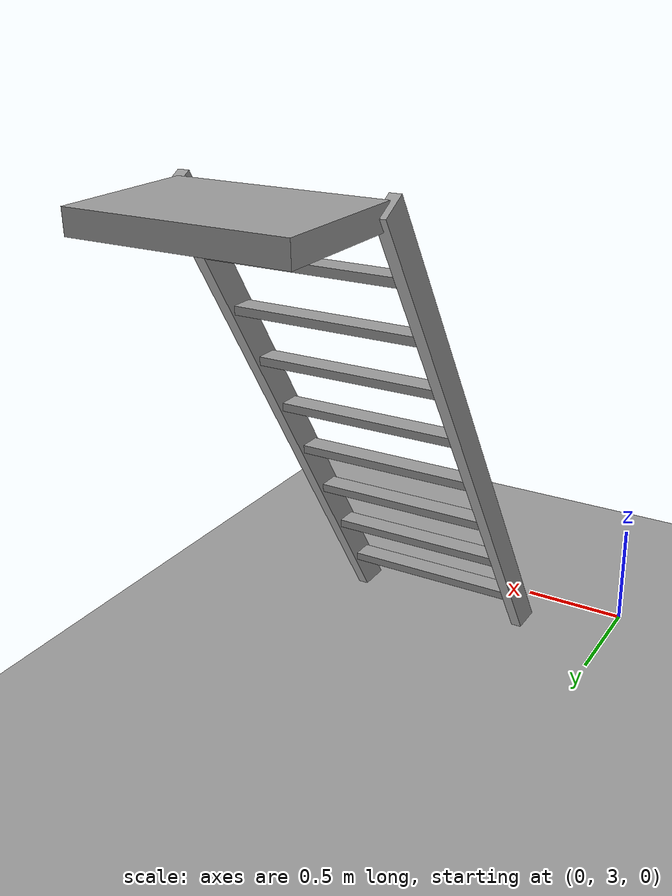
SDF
<sdf version="1.7">
 <world name="default">
  <light name="sun" type="directional">
   <pose>0 0 10 0 -0 0</pose>
   <diffuse>0.8 0.8 0.8 1</diffuse>
   <specular>0.2 0.2 0.2 1</specular>
   <attenuation>
    <range>1000</range>
    <constant>0.9</constant>
    <linear>0.01</linear>
    <quadratic>0.001</quadratic>
   </attenuation>
   <direction>-0.5 0.1 -0.9</direction>
   <spot><inner_angle>0</inner_angle><outer_angle>0</outer_angle><falloff>0</falloff></spot>
  </light>
  <model name="ground_plane">
   <static>1</static>
   <link name="link">
    <collision name="collision">
     <geometry><plane><normal>0 0 1</normal><size>100 100</size></plane></geometry>
     <surface><friction><ode><mu>100</mu><mu2>50</mu2></ode></friction></surface>
    </collision>
    <visual name="visual">
     <cast_shadows>0</cast_shadows>
     <geometry><plane><normal>0 0 1</normal><size>100 100</size></plane></geometry>
     <material>
      <script><uri>file://media/materials/scripts/gazebo.material</uri><name>Gazebo/Grey</name></script>
     </material>
    </visual>
   </link>
  </model>
  <gravity>0 0 -9.8</gravity>
  <magnetic_field>6e-06 2.3e-05 -4.2e-05</magnetic_field>
  <atmosphere type="adiabatic"/>
  <physics type="ode">
   <max_step_size>0.001</max_step_size>
   <real_time_factor>1</real_time_factor>
   <real_time_update_rate>1000</real_time_update_rate>
  </physics>
  <scene><ambient>0.4 0.4 0.4 1</ambient><background>0.7 0.7 0.7 1</background><shadows>1</shadows></scene>
  <spherical_coordinates>
   <surface_model>EARTH_WGS84</surface_model>
   <latitude_deg>0</latitude_deg>
   <longitude_deg>0</longitude_deg>
   <elevation>0</elevation>
   <heading_deg>0</heading_deg>
  </spherical_coordinates>
  <model name="ground_plane_0">
   <static>1</static>
   <link name="link">
    <collision name="collision">
     <geometry><plane><normal>0 0 1</normal><size>100 100</size></plane></geometry>
     <surface><friction><ode><mu>100</mu><mu2>50</mu2></ode></friction></surface>
    </collision>
    <visual name="visual">
     <cast_shadows>0</cast_shadows>
     <geometry><plane><normal>0 0 1</normal><size>100 100</size></plane></geometry>
     <material>
      <script><uri>file://media/materials/scripts/gazebo.material</uri><name>Gazebo/Grey</name></script>
     </material>
    </visual>
   </link>
   <pose>1.43802 -1.35772 0 0 -0 0</pose>
  </model>
  <model name="ladder_60deg_0rails">
   <static>1</static>
   <link name="step0">
    <pose>0 0.15396 0.266667 0 -0 0</pose>
    <inertial>
     <mass>9.75482</mass>
     <inertia>
      <ixx>0.00957124</ixx>
      <iyy>0.65963</iyy>
      <izz>0.666842</izz>
      <ixy>0</ixy>
      <ixz>0</ixz>
      <iyz>0</iyz>
     </inertia>
    </inertial>
    <collision name="collision"><geometry><box><size>0.9 0.1016 0.0381</size></box></geometry></collision>
    <visual name="visual">
     <geometry><box><size>0.9 0.1016 0.0381</size></box></geometry>
     <material>
      <script><uri>file://media/materials/scripts/gazebo.material</uri><name>Gazebo/Grey</name></script>
     </material>
    </visual>
   </link>
   <link name="step1">
    <pose>0 0.30792 0.533333 0 -0 0</pose>
    <inertial>
     <mass>9.75482</mass>
     <inertia>
      <ixx>0.00957124</ixx>
      <iyy>0.65963</iyy>
      <izz>0.666842</izz>
      <ixy>0</ixy>
      <ixz>0</ixz>
      <iyz>0</iyz>
     </inertia>
    </inertial>
    <collision name="collision"><geometry><box><size>0.9 0.1016 0.0381</size></box></geometry></collision>
    <visual name="visual">
     <geometry><box><size>0.9 0.1016 0.0381</size></box></geometry>
     <material>
      <script><uri>file://media/materials/scripts/gazebo.material</uri><name>Gazebo/Grey</name></script>
     </material>
    </visual>
   </link>
   <link name="step2">
    <pose>0 0.46188 0.8 0 -0 0</pose>
    <inertial>
     <mass>9.75482</mass>
     <inertia>
      <ixx>0.00957124</ixx>
      <iyy>0.65963</iyy>
      <izz>0.666842</izz>
      <ixy>0</ixy>
      <ixz>0</ixz>
      <iyz>0</iyz>
     </inertia>
    </inertial>
    <collision name="collision"><geometry><box><size>0.9 0.1016 0.0381</size></box></geometry></collision>
    <visual name="visual">
     <geometry><box><size>0.9 0.1016 0.0381</size></box></geometry>
     <material>
      <script><uri>file://media/materials/scripts/gazebo.material</uri><name>Gazebo/Grey</name></script>
     </material>
    </visual>
   </link>
   <link name="step3">
    <pose>0 0.61584 1.06667 0 -0 0</pose>
    <inertial>
     <mass>9.75482</mass>
     <inertia>
      <ixx>0.00957124</ixx>
      <iyy>0.65963</iyy>
      <izz>0.666842</izz>
      <ixy>0</ixy>
      <ixz>0</ixz>
      <iyz>0</iyz>
     </inertia>
    </inertial>
    <collision name="collision"><geometry><box><size>0.9 0.1016 0.0381</size></box></geometry></collision>
    <visual name="visual">
     <geometry><box><size>0.9 0.1016 0.0381</size></box></geometry>
     <material>
      <script><uri>file://media/materials/scripts/gazebo.material</uri><name>Gazebo/Grey</name></script>
     </material>
    </visual>
   </link>
   <link name="step4">
    <pose>0 0.7698 1.33333 0 -0 0</pose>
    <inertial>
     <mass>9.75482</mass>
     <inertia>
      <ixx>0.00957124</ixx>
      <iyy>0.65963</iyy>
      <izz>0.666842</izz>
      <ixy>0</ixy>
      <ixz>0</ixz>
      <iyz>0</iyz>
     </inertia>
    </inertial>
    <collision name="collision"><geometry><box><size>0.9 0.1016 0.0381</size></box></geometry></collision>
    <visual name="visual">
     <geometry><box><size>0.9 0.1016 0.0381</size></box></geometry>
     <material>
      <script><uri>file://media/materials/scripts/gazebo.material</uri><name>Gazebo/Grey</name></script>
     </material>
    </visual>
   </link>
   <link name="step5">
    <pose>0 0.92376 1.6 0 -0 0</pose>
    <inertial>
     <mass>9.75482</mass>
     <inertia>
      <ixx>0.00957124</ixx>
      <iyy>0.65963</iyy>
      <izz>0.666842</izz>
      <ixy>0</ixy>
      <ixz>0</ixz>
      <iyz>0</iyz>
     </inertia>
    </inertial>
    <collision name="collision"><geometry><box><size>0.9 0.1016 0.0381</size></box></geometry></collision>
    <visual name="visual">
     <geometry><box><size>0.9 0.1016 0.0381</size></box></geometry>
     <material>
      <script><uri>file://media/materials/scripts/gazebo.material</uri><name>Gazebo/Grey</name></script>
     </material>
    </visual>
   </link>
   <link name="step6">
    <pose>0 1.07772 1.86667 0 -0 0</pose>
    <inertial>
     <mass>9.75482</mass>
     <inertia>
      <ixx>0.00957124</ixx>
      <iyy>0.65963</iyy>
      <izz>0.666842</izz>
      <ixy>0</ixy>
      <ixz>0</ixz>
      <iyz>0</iyz>
     </inertia>
    </inertial>
    <collision name="collision"><geometry><box><size>0.9 0.1016 0.0381</size></box></geometry></collision>
    <visual name="visual">
     <geometry><box><size>0.9 0.1016 0.0381</size></box></geometry>
     <material>
      <script><uri>file://media/materials/scripts/gazebo.material</uri><name>Gazebo/Grey</name></script>
     </material>
    </visual>
   </link>
   <link name="step7">
    <pose>0 1.23168 2.13333 0 -0 0</pose>
    <inertial>
     <mass>9.75482</mass>
     <inertia>
      <ixx>0.00957124</ixx>
      <iyy>0.65963</iyy>
      <izz>0.666842</izz>
      <ixy>0</ixy>
      <ixz>0</ixz>
      <iyz>0</iyz>
     </inertia>
    </inertial>
    <collision name="collision"><geometry><box><size>0.9 0.1016 0.0381</size></box></geometry></collision>
    <visual name="visual">
     <geometry><box><size>0.9 0.1016 0.0381</size></box></geometry>
     <material>
      <script><uri>file://media/materials/scripts/gazebo.material</uri><name>Gazebo/Grey</name></script>
     </material>
    </visual>
   </link>
   <link name="landing">
    <pose>0 1.68564 2.4 0 -0 0</pose>
    <inertial>
     <mass>57.6072</mass>
     <inertia><ixx>1.73518</ixx><iyy>3.89545</iyy><izz>5.6167</izz><ixy>0</ixy><ixz>0</ixz><iyz>0</iyz></inertia>
    </inertial>
    <collision name="collision"><geometry><box><size>0.9 0.6 0.1016</size></box></geometry></collision>
    <visual name="visual">
     <geometry><box><size>0.9 0.6 0.1016</size></box></geometry>
     <material>
      <script><uri>file://media/materials/scripts/gazebo.material</uri><name>Gazebo/Grey</name></script>
     </material>
    </visual>
   </link>
   <link name="left_side_wall">
    <pose>-0.45 0.69282 1.2 1.0472 -0 0</pose>
    <collision name="collision"><geometry><box><size>0.0508 2.85128 0.13</size></box></geometry></collision>
    <visual name="visual">
     <geometry><box><size>0.0508 2.85128 0.13</size></box></geometry>
     <material>
      <script><uri>file://media/materials/scripts/gazebo.material</uri><name>Gazebo/Grey</name></script>
     </material>
    </visual>
   </link>
   <link name="right_side_wall">
    <pose>0.45 0.69282 1.2 1.0472 -0 0</pose>
    <collision name="collision"><geometry><box><size>0.0508 2.85128 0.13</size></box></geometry></collision>
    <visual name="visual">
     <geometry><box><size>0.0508 2.85128 0.13</size></box></geometry>
     <material>
      <script><uri>file://media/materials/scripts/gazebo.material</uri><name>Gazebo/Grey</name></script>
     </material>
    </visual>
   </link>
   <pose>0.861605 3.30184 0 0 -0 0</pose>
  </model>
  <model name="asphalt_plane">
   <static>1</static>
   <link name="link">
    <collision name="collision"><geometry><box><size>20 20 0.1</size></box></geometry></collision>
    <visual name="visual">
     <cast_shadows>0</cast_shadows>
     <geometry><box><size>20 20 0.1</size></box></geometry>
     <material>
      <script>
       <uri>model://asphalt_plane/materials/scripts</uri>
       <uri>model://asphalt_plane/materials/textures</uri>
       <name>vrc/asphalt</name>
      </script>
     </material>
    </visual>
   </link>
   <pose>0.077546 -0.022595 0 0 -0 0</pose>
  </model>
 </world>
</sdf>
